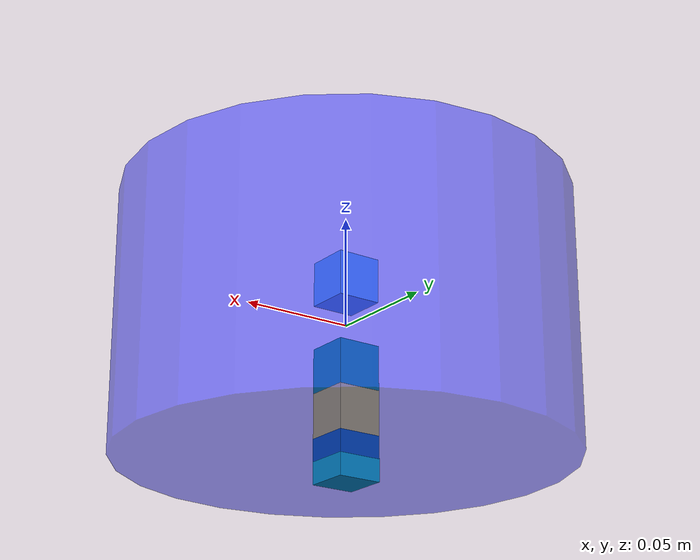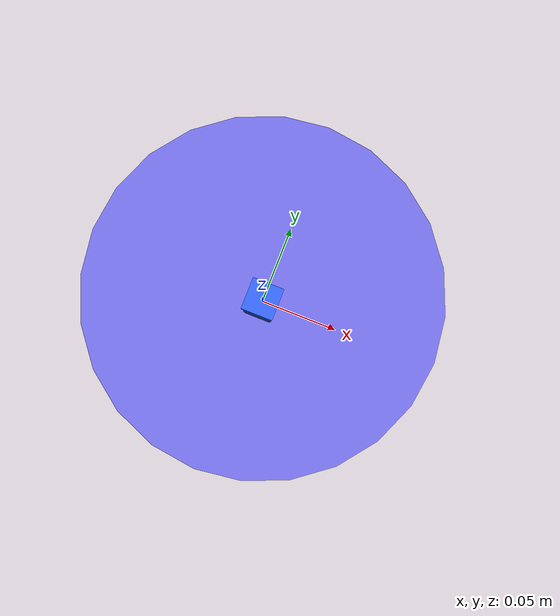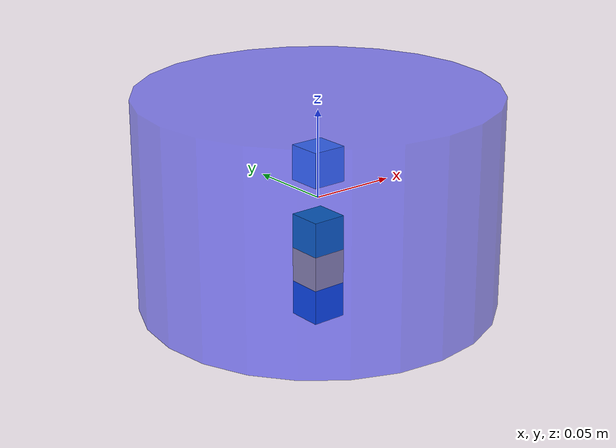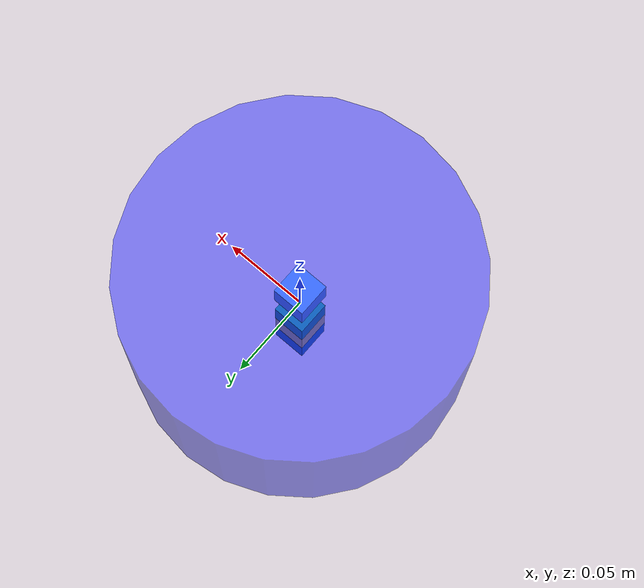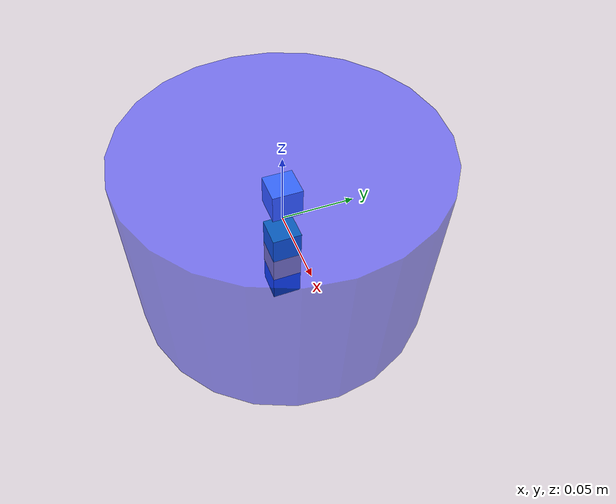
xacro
<?xml version="1.0"?>
<robot xmlns:xacro="http://www.ros.org/wiki/xacro" name="first_robot">
    <!-- 声明 base 模块 -->
    <xacro:macro name="base_link" params="length radius">
        <link name="base_link">
            <visual>
                <origin xyz="0 0 0" rpy="0 0 0" />
                <geometry>
                    <cylinder length="${length}" radius="${radius}" />
                </geometry>
                <material name="blue">
                    <color rgba="0.1 0.1 1.0 0.5" />
                </material>
            </visual>
        </link>
    </xacro:macro>
    <!-- 声明 IMU 模块 -->
    <xacro:macro name="imu_link" params="imu_name xyz">
        <link name="${imu_name}_link">
            <visual>
                <origin xyz="0 0 0" rpy="0 0 0" />
                <geometry>
                    <box size="0.02 0.02 0.02" />
                </geometry>
            </visual>
            <material name="black">
                <color rgba="0 0 0 0.5" />
            </material>
        </link>
        <joint name="${imu_name}_joint" type="fixed">
            <parent link="base_link" />
            <child link="${imu_name}_link" />
            <origin xyz="${xyz}" />
        </joint>
    </xacro:macro>

    <!-- 传递参数调用 base_link 模块 -->
    <xacro:base_link length="0.12" radius="0.1" />
    <!-- 传递参数调用 imu 模块 -->
    <xacro:imu_link imu_name="imu_up" xyz="0 0 0.02" />
    <xacro:imu_link imu_name="imu_down" xyz="0 0 -0.02" />
    <xacro:imu_link imu_name="imu_down1" xyz="0 0 -0.04" />
    <xacro:imu_link imu_name="imu_down2" xyz="0 0 -0.06" />

</robot>
